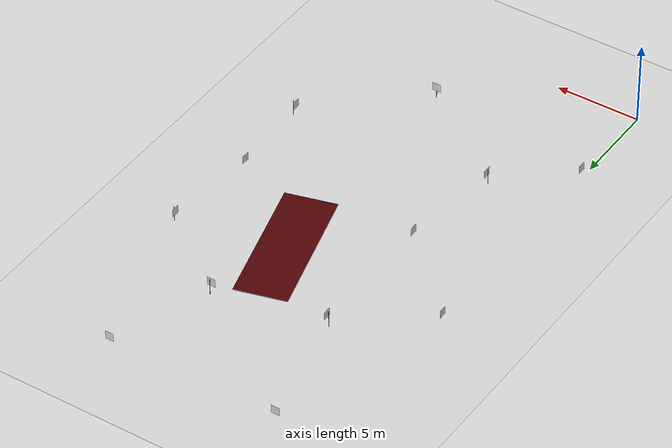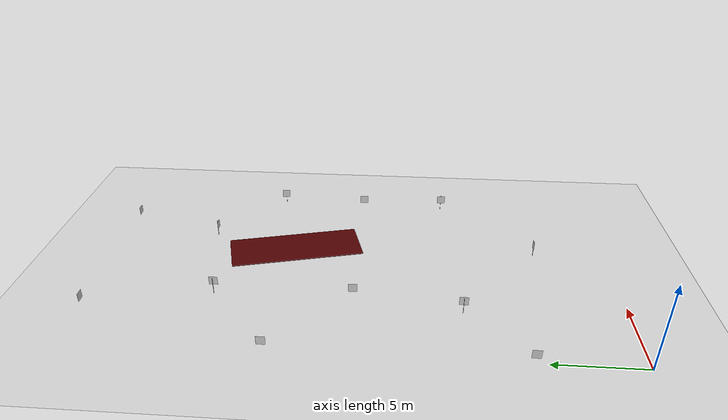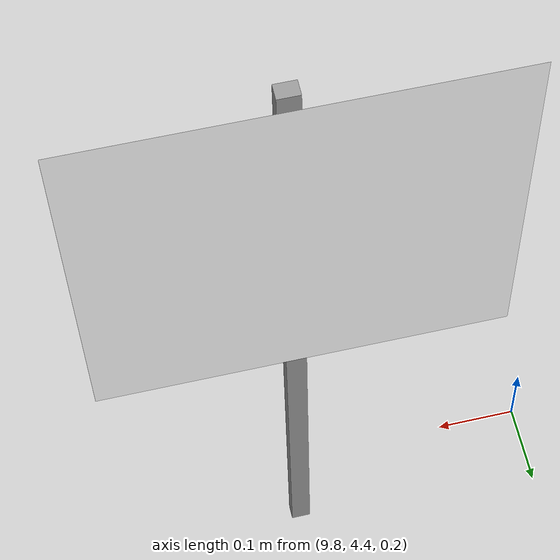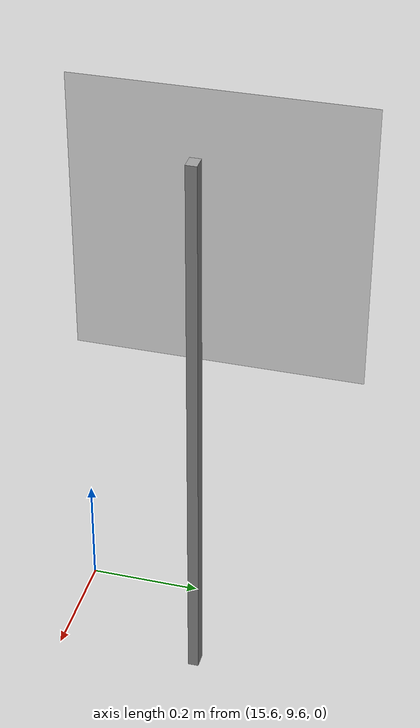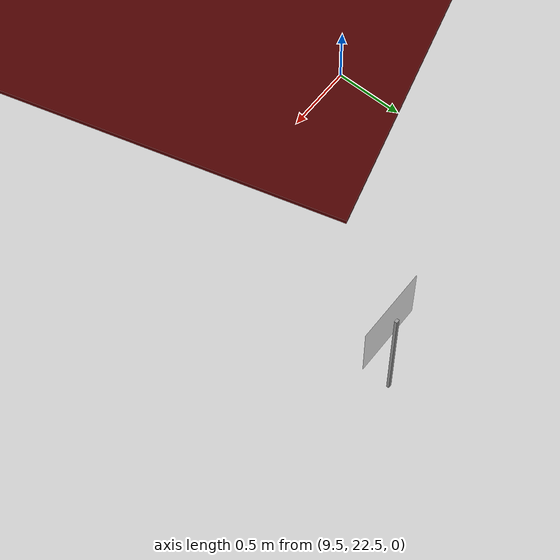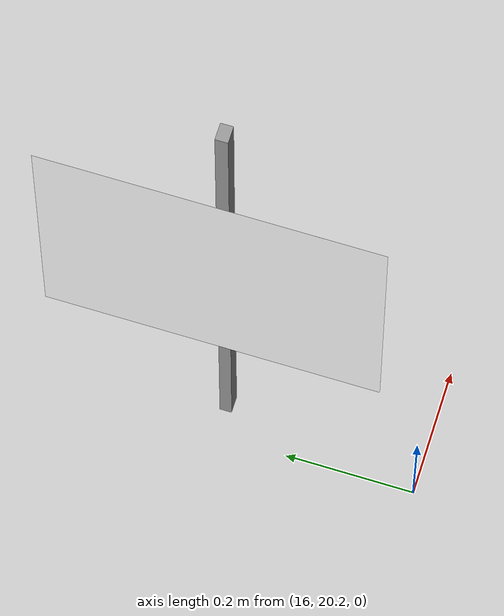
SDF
<sdf version="1.6">
 <world name="default">
  <light name="sun" type="directional">
   <pose>0 0 10 0 -0 0</pose>
   <diffuse>0.8 0.8 0.8 1</diffuse>
   <specular>0.1 0.1 0.1 1</specular>
   <attenuation>
    <range>1000</range>
    <constant>0.9</constant>
    <linear>0.01</linear>
    <quadratic>0.001</quadratic>
   </attenuation>
   <direction>-0.5 0.5 -1</direction>
  </light>
  <model name="ground_plane">
   <static>1</static>
   <link name="link">
    <collision name="collision">
     <geometry><plane><normal>0 0 1</normal><size>100 100</size></plane></geometry>
     <surface><friction><ode><mu>100</mu><mu2>50</mu2></ode></friction></surface>
    </collision>
    <visual name="visual">
     <cast_shadows>0</cast_shadows>
     <geometry><plane><normal>0 0 1</normal><size>100 100</size></plane></geometry>
     <material>
      <script><uri>file://media/materials/scripts/gazebo.material</uri><name>Gazebo/Grey</name></script>
     </material>
    </visual>
   </link>
  </model>
  <gravity>0 0 -9.8</gravity>
  <magnetic_field>6e-06 2.3e-05 -4.2e-05</magnetic_field>
  <atmosphere type="adiabatic"/>
  <physics name="default_physics" default="0" type="ode">
   <max_step_size>0.001</max_step_size>
   <real_time_factor>1</real_time_factor>
   <real_time_update_rate>1000</real_time_update_rate>
  </physics>
  <scene><ambient>0.4 0.4 0.4 1</ambient><background>0.7 0.7 0.7 1</background><shadows>1</shadows></scene>
  <spherical_coordinates>
   <surface_model>EARTH_WGS84</surface_model>
   <latitude_deg>0</latitude_deg>
   <longitude_deg>0</longitude_deg>
   <elevation>0</elevation>
   <heading_deg>0</heading_deg>
  </spherical_coordinates>
  <model name="aruco_visual_marker_0">
   <link name="marker">
    <visual name="visual">
     <geometry><box><size>0.5 0.5 1e-05</size></box></geometry>
     <material>
      <script>
       <uri>model://aruco_visual_marker_0/materials/scripts</uri>
       <uri>model://aruco_visual_marker_0/materials/textures</uri>
       <name>ArucoVisualMarker0/Marker</name>
      </script>
      <ambient>1 1 1 1</ambient>
      <diffuse>1 1 1 1</diffuse>
      <specular>0 0 0 1</specular>
      <emissive>1 1 1 0</emissive>
      <shader type="vertex"><normal_map>__default__</normal_map></shader>
     </material>
    </visual>
    <collision name="collision"><geometry><box><size>0.5 0.5 1e-05</size></box></geometry></collision>
   </link>
   <link name="marker_pad">
    <pose frame="marker">0 0 -1e-05 0 -0 0</pose>
    <visual name="visual">
     <geometry><box><size>1e-05 1e-05 1e-05</size></box></geometry>
     <material>
      <lighting>1</lighting>
      <script><uri>file://media/materials/scripts/gazebo.material</uri><name>Gazebo/White</name></script>
      <ambient>0.3 0.3 0.3 1</ambient>
      <diffuse>0.7 0.7 0.7 1</diffuse>
      <specular>0.01 0.01 0.01 1</specular>
      <emissive>1 1 1 0</emissive>
      <shader type="vertex"><normal_map>__default__</normal_map></shader>
     </material>
    </visual>
    <collision name="collision"><geometry><box><size>0.5 0.5 1e-05</size></box></geometry></collision>
   </link>
   <joint name="marker_JOINT_marker_pad" type="revolute">
    <parent>marker</parent>
    <child>marker_pad</child>
    <axis>
     <xyz>0 0 1</xyz>
     <limit><upper>0</upper><lower>0</lower></limit>
     <use_parent_model_frame>0</use_parent_model_frame>
     <dynamics><spring_reference>0</spring_reference><spring_stiffness>0</spring_stiffness></dynamics>
    </axis>
   </joint>
   <static>1</static>
   <pose>10.085 4.41103 0.744645 1.57079 -1.57079 3.14159</pose>
  </model>
  <model name="aruco_visual_marker_1">
   <link name="marker">
    <visual name="visual">
     <geometry><box><size>0.5 0.5 1e-05</size></box></geometry>
     <material>
      <script>
       <uri>model://aruco_visual_marker_1/materials/scripts</uri>
       <uri>model://aruco_visual_marker_1/materials/textures</uri>
       <name>ArucoVisualMarker1/Marker</name>
      </script>
      <ambient>1 1 1 1</ambient>
      <diffuse>1 1 1 1</diffuse>
      <specular>0 0 0 1</specular>
      <emissive>1 1 1 0</emissive>
      <shader type="vertex"><normal_map>__default__</normal_map></shader>
     </material>
    </visual>
    <collision name="collision"><geometry><box><size>0.5 0.5 1e-05</size></box></geometry></collision>
   </link>
   <link name="marker_pad">
    <pose frame="marker">0 0 -1e-05 0 -0 0</pose>
    <visual name="visual">
     <geometry><box><size>1e-05 1e-05 1e-05</size></box></geometry>
     <material>
      <lighting>1</lighting>
      <script><uri>file://media/materials/scripts/gazebo.material</uri><name>Gazebo/White</name></script>
      <ambient>0.3 0.3 0.3 1</ambient>
      <diffuse>0.7 0.7 0.7 1</diffuse>
      <specular>0.01 0.01 0.01 1</specular>
      <emissive>1 1 1 0</emissive>
      <shader type="vertex"><normal_map>__default__</normal_map></shader>
     </material>
    </visual>
    <collision name="collision"><geometry><box><size>0.5 0.5 1e-05</size></box></geometry></collision>
   </link>
   <joint name="marker_JOINT_marker_pad" type="revolute">
    <parent>marker</parent>
    <child>marker_pad</child>
    <axis>
     <xyz>0 0 1</xyz>
     <limit><upper>0</upper><lower>0</lower></limit>
     <use_parent_model_frame>0</use_parent_model_frame>
     <dynamics><spring_reference>0</spring_reference><spring_stiffness>0</spring_stiffness></dynamics>
    </axis>
   </joint>
   <static>1</static>
   <pose>15.6106 9.84209 0.783528 -3.14159 -1.57079 -3.14159</pose>
  </model>
  <model name="aruco_visual_marker_2">
   <link name="marker">
    <visual name="visual">
     <geometry><box><size>0.5 0.5 1e-05</size></box></geometry>
     <material>
      <script>
       <uri>model://aruco_visual_marker_2/materials/scripts</uri>
       <uri>model://aruco_visual_marker_2/materials/textures</uri>
       <name>ArucoVisualMarker2/Marker</name>
      </script>
      <ambient>1 1 1 1</ambient>
      <diffuse>1 1 1 1</diffuse>
      <specular>0 0 0 1</specular>
      <emissive>1 1 1 0</emissive>
      <shader type="vertex"><normal_map>__default__</normal_map></shader>
     </material>
    </visual>
    <collision name="collision"><geometry><box><size>0.5 0.5 1e-05</size></box></geometry></collision>
   </link>
   <link name="marker_pad">
    <pose frame="marker">0 0 -1e-05 0 -0 0</pose>
    <visual name="visual">
     <geometry><box><size>1e-05 1e-05 1e-05</size></box></geometry>
     <material>
      <lighting>1</lighting>
      <script><uri>file://media/materials/scripts/gazebo.material</uri><name>Gazebo/White</name></script>
      <ambient>0.3 0.3 0.3 1</ambient>
      <diffuse>0.7 0.7 0.7 1</diffuse>
      <specular>0.01 0.01 0.01 1</specular>
      <emissive>1 1 1 0</emissive>
      <shader type="vertex"><normal_map>__default__</normal_map></shader>
     </material>
    </visual>
    <collision name="collision"><geometry><box><size>0.5 0.5 1e-05</size></box></geometry></collision>
   </link>
   <joint name="marker_JOINT_marker_pad" type="revolute">
    <parent>marker</parent>
    <child>marker_pad</child>
    <axis>
     <xyz>0 0 1</xyz>
     <limit><upper>0</upper><lower>0</lower></limit>
     <use_parent_model_frame>0</use_parent_model_frame>
     <dynamics><spring_reference>0</spring_reference><spring_stiffness>0</spring_stiffness></dynamics>
    </axis>
   </joint>
   <static>1</static>
   <pose>4.68821 15.0193 0.80357 -3e-06 -1.57079 3.14159</pose>
  </model>
  <model name="aruco_visual_marker_3">
   <link name="marker">
    <visual name="visual">
     <geometry><box><size>0.5 0.5 1e-05</size></box></geometry>
     <material>
      <script>
       <uri>model://aruco_visual_marker_3/materials/scripts</uri>
       <uri>model://aruco_visual_marker_3/materials/textures</uri>
       <name>ArucoVisualMarker3/Marker</name>
      </script>
      <ambient>1 1 1 1</ambient>
      <diffuse>1 1 1 1</diffuse>
      <specular>0 0 0 1</specular>
      <emissive>1 1 1 0</emissive>
      <shader type="vertex"><normal_map>__default__</normal_map></shader>
     </material>
    </visual>
    <collision name="collision"><geometry><box><size>0.5 0.5 1e-05</size></box></geometry></collision>
   </link>
   <link name="marker_pad">
    <pose frame="marker">0 0 -1e-05 0 -0 0</pose>
    <visual name="visual">
     <geometry><box><size>1e-05 1e-05 1e-05</size></box></geometry>
     <material>
      <lighting>1</lighting>
      <script><uri>file://media/materials/scripts/gazebo.material</uri><name>Gazebo/White</name></script>
      <ambient>0.3 0.3 0.3 1</ambient>
      <diffuse>0.7 0.7 0.7 1</diffuse>
      <specular>0.01 0.01 0.01 1</specular>
      <emissive>1 1 1 0</emissive>
      <shader type="vertex"><normal_map>__default__</normal_map></shader>
     </material>
    </visual>
    <collision name="collision"><geometry><box><size>0.5 0.5 1e-05</size></box></geometry></collision>
   </link>
   <joint name="marker_JOINT_marker_pad" type="revolute">
    <parent>marker</parent>
    <child>marker_pad</child>
    <axis>
     <xyz>0 0 1</xyz>
     <limit><upper>0</upper><lower>0</lower></limit>
     <use_parent_model_frame>0</use_parent_model_frame>
     <dynamics><spring_reference>0</spring_reference><spring_stiffness>0</spring_stiffness></dynamics>
    </axis>
   </joint>
   <static>1</static>
   <pose>11.1299 24.1027 0.785654 -1.57554 -1.57079 -3.13686</pose>
  </model>
  <model name="unit_box_0_0">
   <link name="link">
    <inertial>
     <mass>1</mass>
     <inertia>
      <ixx>0.166667</ixx>
      <ixy>0</ixy>
      <ixz>0</ixz>
      <iyy>0.166667</iyy>
      <iyz>0</iyz>
      <izz>0.166667</izz>
     </inertia>
    </inertial>
    <visual name="visual">
     <geometry><box><size>0.025351 0.018729 1</size></box></geometry>
     <material>
      <script><name>Gazebo/Grey</name><uri>file://media/materials/scripts/gazebo.material</uri></script>
      <ambient>1 1 1 1</ambient>
      <diffuse>0.7 0.7 0.7 1</diffuse>
      <specular>0.01 0.01 0.01 1</specular>
      <emissive>0.7 0.7 0.7 1</emissive>
      <shader type="vertex"><normal_map>__default__</normal_map></shader>
     </material>
    </visual>
    <collision name="collision">
     <geometry><box><size>0.025351 0.018729 1</size></box></geometry>
     <surface>
      <friction>
       <ode><mu>1</mu><mu2>1</mu2><fdir1>0 0 0</fdir1><slip1>0</slip1><slip2>0</slip2></ode>
       <torsional>
        <coefficient>1</coefficient>
        <patch_radius>0</patch_radius>
        <surface_radius>0</surface_radius>
        <use_patch_radius>1</use_patch_radius>
        <ode><slip>0</slip></ode>
       </torsional>
      </friction>
      <bounce><restitution_coefficient>0</restitution_coefficient><threshold>1e+06</threshold></bounce>
      <contact>
       <collide_without_contact>0</collide_without_contact>
       <collide_without_contact_bitmask>1</collide_without_contact_bitmask>
       <collide_bitmask>1</collide_bitmask>
       <ode>
        <soft_cfm>0</soft_cfm>
        <soft_erp>0.2</soft_erp>
        <kp>1e+13</kp>
        <kd>1</kd>
        <max_vel>0.01</max_vel>
        <min_depth>0</min_depth>
       </ode>
       <bullet>
        <split_impulse>1</split_impulse>
        <split_impulse_penetration_threshold>-0.01</split_impulse_penetration_threshold>
        <soft_cfm>0</soft_cfm>
        <soft_erp>0.2</soft_erp>
        <kp>1e+13</kp>
        <kd>1</kd>
       </bullet>
      </contact>
     </surface>
    </collision>
   </link>
   <static>0</static>
   <pose>15.7825 9.84777 0.5 -8e-06 6e-06 0.000768</pose>
  </model>
  <model name="unit_box_0_0_clone_1">
   <link name="link">
    <inertial>
     <mass>1</mass>
     <inertia>
      <ixx>0.166667</ixx>
      <ixy>0</ixy>
      <ixz>0</ixz>
      <iyy>0.166667</iyy>
      <iyz>0</iyz>
      <izz>0.166667</izz>
     </inertia>
    </inertial>
    <visual name="visual">
     <geometry><box><size>0.025351 0.018729 1</size></box></geometry>
     <material>
      <script><name>Gazebo/Grey</name><uri>file://media/materials/scripts/gazebo.material</uri></script>
      <ambient>1 1 1 1</ambient>
      <diffuse>0.7 0.7 0.7 1</diffuse>
      <specular>0.01 0.01 0.01 1</specular>
      <emissive>0.7 0.7 0.7 1</emissive>
      <shader type="vertex"><normal_map>__default__</normal_map></shader>
     </material>
    </visual>
    <collision name="collision">
     <geometry><box><size>0.025351 0.018729 1</size></box></geometry>
     <surface>
      <friction>
       <ode><mu>1</mu><mu2>1</mu2><fdir1>0 0 0</fdir1><slip1>0</slip1><slip2>0</slip2></ode>
       <torsional>
        <coefficient>1</coefficient>
        <patch_radius>0</patch_radius>
        <surface_radius>0</surface_radius>
        <use_patch_radius>1</use_patch_radius>
        <ode><slip>0</slip></ode>
       </torsional>
      </friction>
      <bounce><restitution_coefficient>0</restitution_coefficient><threshold>1e+06</threshold></bounce>
      <contact>
       <collide_without_contact>0</collide_without_contact>
       <collide_without_contact_bitmask>1</collide_without_contact_bitmask>
       <collide_bitmask>1</collide_bitmask>
       <ode>
        <soft_cfm>0</soft_cfm>
        <soft_erp>0.2</soft_erp>
        <kp>1e+13</kp>
        <kd>1</kd>
        <max_vel>0.01</max_vel>
        <min_depth>0</min_depth>
       </ode>
       <bullet>
        <split_impulse>1</split_impulse>
        <split_impulse_penetration_threshold>-0.01</split_impulse_penetration_threshold>
        <soft_cfm>0</soft_cfm>
        <soft_erp>0.2</soft_erp>
        <kp>1e+13</kp>
        <kd>1</kd>
       </bullet>
      </contact>
     </surface>
    </collision>
   </link>
   <static>0</static>
   <pose>11.1759 24.179 0.5 5e-06 -2e-06 0.000407</pose>
  </model>
  <model name="aruco_visual_marker_4">
   <link name="marker">
    <visual name="visual">
     <geometry><box><size>0.5 0.5 1e-05</size></box></geometry>
     <material>
      <script>
       <uri>model://aruco_visual_marker_4/materials/scripts</uri>
       <uri>model://aruco_visual_marker_4/materials/textures</uri>
       <name>ArucoVisualMarker4/Marker</name>
      </script>
      <ambient>1 1 1 1</ambient>
      <diffuse>1 1 1 1</diffuse>
      <specular>0 0 0 1</specular>
      <emissive>1 1 1 0</emissive>
      <shader type="vertex"><normal_map>__default__</normal_map></shader>
     </material>
    </visual>
    <collision name="collision"><geometry><box><size>0.5 0.5 1e-05</size></box></geometry></collision>
   </link>
   <link name="marker_pad">
    <pose frame="marker">0 0 -1e-05 0 -0 0</pose>
    <visual name="visual">
     <geometry><box><size>1e-05 1e-05 1e-05</size></box></geometry>
     <material>
      <lighting>1</lighting>
      <script><uri>file://media/materials/scripts/gazebo.material</uri><name>Gazebo/White</name></script>
      <ambient>0.3 0.3 0.3 1</ambient>
      <diffuse>0.7 0.7 0.7 1</diffuse>
      <specular>0.01 0.01 0.01 1</specular>
      <emissive>1 1 1 0</emissive>
      <shader type="vertex"><normal_map>__default__</normal_map></shader>
     </material>
    </visual>
    <collision name="collision"><geometry><box><size>0.5 0.5 1e-05</size></box></geometry></collision>
   </link>
   <joint name="marker_JOINT_marker_pad" type="revolute">
    <parent>marker</parent>
    <child>marker_pad</child>
    <axis>
     <xyz>0 0 1</xyz>
     <limit><upper>0</upper><lower>0</lower></limit>
     <use_parent_model_frame>0</use_parent_model_frame>
     <dynamics><spring_reference>0</spring_reference><spring_stiffness>0</spring_stiffness></dynamics>
    </axis>
   </joint>
   <static>1</static>
   <pose>4.8351 22.8575 0.777007 -3e-06 -1.57079 3.14159</pose>
  </model>
  <model name="aruco_visual_marker_5">
   <link name="marker">
    <visual name="visual">
     <geometry><box><size>0.5 0.5 1e-05</size></box></geometry>
     <material>
      <script>
       <uri>model://aruco_visual_marker_5/materials/scripts</uri>
       <uri>model://aruco_visual_marker_5/materials/textures</uri>
       <name>ArucoVisualMarker5/Marker</name>
      </script>
      <ambient>1 1 1 1</ambient>
      <diffuse>1 1 1 1</diffuse>
      <specular>0 0 0 1</specular>
      <emissive>1 1 1 0</emissive>
      <shader type="vertex"><normal_map>__default__</normal_map></shader>
     </material>
    </visual>
    <collision name="collision"><geometry><box><size>0.5 0.5 1e-05</size></box></geometry></collision>
   </link>
   <link name="marker_pad">
    <pose frame="marker">0 0 -1e-05 0 -0 0</pose>
    <visual name="visual">
     <geometry><box><size>1e-05 1e-05 1e-05</size></box></geometry>
     <material>
      <lighting>1</lighting>
      <script><uri>file://media/materials/scripts/gazebo.material</uri><name>Gazebo/White</name></script>
      <ambient>0.3 0.3 0.3 1</ambient>
      <diffuse>0.7 0.7 0.7 1</diffuse>
      <specular>0.01 0.01 0.01 1</specular>
      <emissive>1 1 1 0</emissive>
      <shader type="vertex"><normal_map>__default__</normal_map></shader>
     </material>
    </visual>
    <collision name="collision"><geometry><box><size>0.5 0.5 1e-05</size></box></geometry></collision>
   </link>
   <joint name="marker_JOINT_marker_pad" type="revolute">
    <parent>marker</parent>
    <child>marker_pad</child>
    <axis>
     <xyz>0 0 1</xyz>
     <limit><upper>0</upper><lower>0</lower></limit>
     <use_parent_model_frame>0</use_parent_model_frame>
     <dynamics><spring_reference>0</spring_reference><spring_stiffness>0</spring_stiffness></dynamics>
    </axis>
   </joint>
   <static>1</static>
   <pose>15.9781 20.5062 0.677507 3.14159 -1.57079 3.14159</pose>
  </model>
  <model name="aruco_visual_marker_6">
   <link name="marker">
    <visual name="visual">
     <geometry><box><size>0.5 0.5 1e-05</size></box></geometry>
     <material>
      <script>
       <uri>model://aruco_visual_marker_6/materials/scripts</uri>
       <uri>model://aruco_visual_marker_6/materials/textures</uri>
       <name>ArucoVisualMarker6/Marker</name>
      </script>
      <ambient>1 1 1 1</ambient>
      <diffuse>1 1 1 1</diffuse>
      <specular>0 0 0 1</specular>
      <emissive>1 1 1 0</emissive>
      <shader type="vertex"><normal_map>__default__</normal_map></shader>
     </material>
    </visual>
    <collision name="collision"><geometry><box><size>0.5 0.5 1e-05</size></box></geometry></collision>
   </link>
   <link name="marker_pad">
    <pose frame="marker">0 0 -1e-05 0 -0 0</pose>
    <visual name="visual">
     <geometry><box><size>1e-05 1e-05 1e-05</size></box></geometry>
     <material>
      <lighting>1</lighting>
      <script><uri>file://media/materials/scripts/gazebo.material</uri><name>Gazebo/White</name></script>
      <ambient>0.3 0.3 0.3 1</ambient>
      <diffuse>0.7 0.7 0.7 1</diffuse>
      <specular>0.01 0.01 0.01 1</specular>
      <emissive>1 1 1 0</emissive>
      <shader type="vertex"><normal_map>__default__</normal_map></shader>
     </material>
    </visual>
    <collision name="collision"><geometry><box><size>0.5 0.5 1e-05</size></box></geometry></collision>
   </link>
   <joint name="marker_JOINT_marker_pad" type="revolute">
    <parent>marker</parent>
    <child>marker_pad</child>
    <axis>
     <xyz>0 0 1</xyz>
     <limit><upper>0</upper><lower>0</lower></limit>
     <use_parent_model_frame>0</use_parent_model_frame>
     <dynamics><spring_reference>0</spring_reference><spring_stiffness>0</spring_stiffness></dynamics>
    </axis>
   </joint>
   <static>1</static>
   <pose>4.00249 8.95616 0.739884 -3e-06 -1.57079 3.14159</pose>
  </model>
  <model name="aruco_visual_marker_7">
   <link name="marker">
    <visual name="visual">
     <geometry><box><size>0.5 0.5 1e-05</size></box></geometry>
     <material>
      <script>
       <uri>model://aruco_visual_marker_7/materials/scripts</uri>
       <uri>model://aruco_visual_marker_7/materials/textures</uri>
       <name>ArucoVisualMarker7/Marker</name>
      </script>
      <ambient>1 1 1 1</ambient>
      <diffuse>1 1 1 1</diffuse>
      <specular>0 0 0 1</specular>
      <emissive>1 1 1 0</emissive>
      <shader type="vertex"><normal_map>__default__</normal_map></shader>
     </material>
    </visual>
    <collision name="collision"><geometry><box><size>0.5 0.5 1e-05</size></box></geometry></collision>
   </link>
   <link name="marker_pad">
    <pose frame="marker">0 0 -1e-05 0 -0 0</pose>
    <visual name="visual">
     <geometry><box><size>1e-05 1e-05 1e-05</size></box></geometry>
     <material>
      <lighting>1</lighting>
      <script><uri>file://media/materials/scripts/gazebo.material</uri><name>Gazebo/White</name></script>
      <ambient>0.3 0.3 0.3 1</ambient>
      <diffuse>0.7 0.7 0.7 1</diffuse>
      <specular>0.01 0.01 0.01 1</specular>
      <emissive>1 1 1 0</emissive>
      <shader type="vertex"><normal_map>__default__</normal_map></shader>
     </material>
    </visual>
    <collision name="collision"><geometry><box><size>0.5 0.5 1e-05</size></box></geometry></collision>
   </link>
   <joint name="marker_JOINT_marker_pad" type="revolute">
    <parent>marker</parent>
    <child>marker_pad</child>
    <axis>
     <xyz>0 0 1</xyz>
     <limit><upper>0</upper><lower>0</lower></limit>
     <use_parent_model_frame>0</use_parent_model_frame>
     <dynamics><spring_reference>0</spring_reference><spring_stiffness>0</spring_stiffness></dynamics>
    </axis>
   </joint>
   <static>1</static>
   <pose>15.3213 15.043 0.769285 3.14159 -1.57079 3.14159</pose>
  </model>
  <model name="unit_box_0_0_clone_1_clone_0">
   <link name="link">
    <inertial>
     <mass>1</mass>
     <inertia>
      <ixx>0.166667</ixx>
      <ixy>0</ixy>
      <ixz>0</ixz>
      <iyy>0.166667</iyy>
      <iyz>0</iyz>
      <izz>0.166667</izz>
     </inertia>
    </inertial>
    <visual name="visual">
     <geometry><box><size>0.025351 0.018729 1</size></box></geometry>
     <material>
      <script><name>Gazebo/Grey</name><uri>file://media/materials/scripts/gazebo.material</uri></script>
      <ambient>1 1 1 1</ambient>
      <diffuse>0.7 0.7 0.7 1</diffuse>
      <specular>0.01 0.01 0.01 1</specular>
      <emissive>0.7 0.7 0.7 1</emissive>
      <shader type="vertex"><normal_map>__default__</normal_map></shader>
     </material>
    </visual>
    <collision name="collision">
     <geometry><box><size>0.025351 0.018729 1</size></box></geometry>
     <surface>
      <friction>
       <ode><mu>1</mu><mu2>1</mu2><fdir1>0 0 0</fdir1><slip1>0</slip1><slip2>0</slip2></ode>
       <torsional>
        <coefficient>1</coefficient>
        <patch_radius>0</patch_radius>
        <surface_radius>0</surface_radius>
        <use_patch_radius>1</use_patch_radius>
        <ode><slip>0</slip></ode>
       </torsional>
      </friction>
      <bounce><restitution_coefficient>0</restitution_coefficient><threshold>1e+06</threshold></bounce>
      <contact>
       <collide_without_contact>0</collide_without_contact>
       <collide_without_contact_bitmask>1</collide_without_contact_bitmask>
       <collide_bitmask>1</collide_bitmask>
       <ode>
        <soft_cfm>0</soft_cfm>
        <soft_erp>0.2</soft_erp>
        <kp>1e+13</kp>
        <kd>1</kd>
        <max_vel>0.01</max_vel>
        <min_depth>0</min_depth>
       </ode>
       <bullet>
        <split_impulse>1</split_impulse>
        <split_impulse_penetration_threshold>-0.01</split_impulse_penetration_threshold>
        <soft_cfm>0</soft_cfm>
        <soft_erp>0.2</soft_erp>
        <kp>1e+13</kp>
        <kd>1</kd>
       </bullet>
      </contact>
     </surface>
    </collision>
   </link>
   <static>0</static>
   <pose>3.93268 8.95438 0.5 -1.5e-05 5e-06 0.00017</pose>
  </model>
  <model name="unit_box_0_0_clone_1_clone_2">
   <link name="link">
    <inertial>
     <mass>1</mass>
     <inertia>
      <ixx>0.166667</ixx>
      <ixy>0</ixy>
      <ixz>0</ixz>
      <iyy>0.166667</iyy>
      <iyz>0</iyz>
      <izz>0.166667</izz>
     </inertia>
    </inertial>
    <visual name="visual">
     <geometry><box><size>0.025351 0.018729 1</size></box></geometry>
     <material>
      <script><name>Gazebo/Grey</name><uri>file://media/materials/scripts/gazebo.material</uri></script>
      <ambient>1 1 1 1</ambient>
      <diffuse>0.7 0.7 0.7 1</diffuse>
      <specular>0.01 0.01 0.01 1</specular>
      <emissive>0.7 0.7 0.7 1</emissive>
      <shader type="vertex"><normal_map>__default__</normal_map></shader>
     </material>
    </visual>
    <collision name="collision">
     <geometry><box><size>0.025351 0.018729 1</size></box></geometry>
     <surface>
      <friction>
       <ode><mu>1</mu><mu2>1</mu2><fdir1>0 0 0</fdir1><slip1>0</slip1><slip2>0</slip2></ode>
       <torsional>
        <coefficient>1</coefficient>
        <patch_radius>0</patch_radius>
        <surface_radius>0</surface_radius>
        <use_patch_radius>1</use_patch_radius>
        <ode><slip>0</slip></ode>
       </torsional>
      </friction>
      <bounce><restitution_coefficient>0</restitution_coefficient><threshold>1e+06</threshold></bounce>
      <contact>
       <collide_without_contact>0</collide_without_contact>
       <collide_without_contact_bitmask>1</collide_without_contact_bitmask>
       <collide_bitmask>1</collide_bitmask>
       <ode>
        <soft_cfm>0</soft_cfm>
        <soft_erp>0.2</soft_erp>
        <kp>1e+13</kp>
        <kd>1</kd>
        <max_vel>0.01</max_vel>
        <min_depth>0</min_depth>
       </ode>
       <bullet>
        <split_impulse>1</split_impulse>
        <split_impulse_penetration_threshold>-0.01</split_impulse_penetration_threshold>
        <soft_cfm>0</soft_cfm>
        <soft_erp>0.2</soft_erp>
        <kp>1e+13</kp>
        <kd>1</kd>
       </bullet>
      </contact>
     </surface>
    </collision>
   </link>
   <static>0</static>
   <pose>16.0551 20.5083 0.5 -3e-06 1.3e-05 0.00041</pose>
  </model>
  <model name="empty"><pose>0 0 0.01 0 -0 0</pose></model>
  <model name="unit_box_0_0_clone">
   <link name="link">
    <inertial>
     <mass>1</mass>
     <inertia>
      <ixx>0.166667</ixx>
      <ixy>0</ixy>
      <ixz>0</ixz>
      <iyy>0.166667</iyy>
      <iyz>0</iyz>
      <izz>0.166667</izz>
     </inertia>
    </inertial>
    <visual name="visual">
     <geometry><box><size>0.025351 0.018729 1</size></box></geometry>
     <material>
      <script><name>Gazebo/Grey</name><uri>file://media/materials/scripts/gazebo.material</uri></script>
      <ambient>1 1 1 1</ambient>
      <diffuse>0.7 0.7 0.7 1</diffuse>
      <specular>0.01 0.01 0.01 1</specular>
      <emissive>0.7 0.7 0.7 1</emissive>
      <shader type="vertex"><normal_map>__default__</normal_map></shader>
     </material>
    </visual>
    <collision name="collision">
     <geometry><box><size>0.025351 0.018729 1</size></box></geometry>
     <surface>
      <friction>
       <ode><mu>1</mu><mu2>1</mu2><fdir1>0 0 0</fdir1><slip1>0</slip1><slip2>0</slip2></ode>
       <torsional>
        <coefficient>1</coefficient>
        <patch_radius>0</patch_radius>
        <surface_radius>0</surface_radius>
        <use_patch_radius>1</use_patch_radius>
        <ode><slip>0</slip></ode>
       </torsional>
      </friction>
      <bounce><restitution_coefficient>0</restitution_coefficient><threshold>1e+06</threshold></bounce>
      <contact>
       <collide_without_contact>0</collide_without_contact>
       <collide_without_contact_bitmask>1</collide_without_contact_bitmask>
       <collide_bitmask>1</collide_bitmask>
       <ode>
        <soft_cfm>0</soft_cfm>
        <soft_erp>0.2</soft_erp>
        <kp>1e+13</kp>
        <kd>1</kd>
        <max_vel>0.01</max_vel>
        <min_depth>0</min_depth>
       </ode>
       <bullet>
        <split_impulse>1</split_impulse>
        <split_impulse_penetration_threshold>-0.01</split_impulse_penetration_threshold>
        <soft_cfm>0</soft_cfm>
        <soft_erp>0.2</soft_erp>
        <kp>1e+13</kp>
        <kd>1</kd>
       </bullet>
      </contact>
     </surface>
    </collision>
   </link>
   <static>0</static>
   <pose>10.0916 4.38901 0.5 0 1e-06 0.000578</pose>
  </model>
  <model name="unit_box_0_0_clone_0">
   <link name="link">
    <inertial>
     <mass>1</mass>
     <inertia>
      <ixx>0.166667</ixx>
      <ixy>0</ixy>
      <ixz>0</ixz>
      <iyy>0.166667</iyy>
      <iyz>0</iyz>
      <izz>0.166667</izz>
     </inertia>
    </inertial>
    <visual name="visual">
     <geometry><box><size>0.025351 0.018729 1</size></box></geometry>
     <material>
      <script><name>Gazebo/Grey</name><uri>file://media/materials/scripts/gazebo.material</uri></script>
      <ambient>1 1 1 1</ambient>
      <diffuse>0.7 0.7 0.7 1</diffuse>
      <specular>0.01 0.01 0.01 1</specular>
      <emissive>0.7 0.7 0.7 1</emissive>
      <shader type="vertex"><normal_map>__default__</normal_map></shader>
     </material>
    </visual>
    <collision name="collision">
     <geometry><box><size>0.025351 0.018729 1</size></box></geometry>
     <surface>
      <contact>
       <collide_without_contact>0</collide_without_contact>
       <collide_without_contact_bitmask>1</collide_without_contact_bitmask>
       <collide_bitmask>1</collide_bitmask>
      </contact>
     </surface>
    </collision>
   </link>
   <static>0</static>
   <pose>4.72106 22.8688 0.5 4e-06 -5e-06 0.001231</pose>
  </model>
  <model name="chapa__3">
   <link name="link">
    <inertial>
     <mass>30</mass>
     <inertia>
      <ixx>0.166667</ixx>
      <ixy>0</ixy>
      <ixz>0</ixz>
      <iyy>0.166667</iyy>
      <iyz>0</iyz>
      <izz>0.166667</izz>
     </inertia>
    </inertial>
    <visual name="visual">
     <geometry><box><size>3 8 0.059693</size></box></geometry>
     <material>
      <script><name>Gazebo/Grey</name><uri>file://media/materials/scripts/gazebo.material</uri></script>
      <ambient>0.3 0 0 1</ambient>
      <diffuse>0.1 0.1 0.1 1</diffuse>
      <specular>0.3 0 0 1</specular>
      <emissive>0 0 0 1</emissive>
      <shader type="vertex"><normal_map>__default__</normal_map></shader>
     </material>
    </visual>
    <collision name="collision">
     <max_contacts>100</max_contacts>
     <geometry><box><size>3.28456 7.99272 0.019693</size></box></geometry>
     <surface>
      <contact>
       <collide_without_contact>0</collide_without_contact>
       <collide_without_contact_bitmask>0</collide_without_contact_bitmask>
       <collide_bitmask>0</collide_bitmask>
      </contact>
     </surface>
    </collision>
   </link>
   <static>1</static>
   <pose>10 19 0.009846 0 -0 0.2618</pose>
  </model>
  <model name="aruco_visual_marker_8">
   <link name="marker">
    <visual name="visual">
     <geometry><box><size>0.5 0.5 1e-05</size></box></geometry>
     <material>
      <script>
       <uri>model://aruco_visual_marker_8/materials/scripts</uri>
       <uri>model://aruco_visual_marker_8/materials/textures</uri>
       <name>ArucoVisualMarker8/Marker</name>
      </script>
      <ambient>1 1 1 1</ambient>
      <diffuse>1 1 1 1</diffuse>
      <specular>0 0 0 1</specular>
      <emissive>1 1 1 0</emissive>
      <shader type="vertex"><normal_map>__default__</normal_map></shader>
     </material>
    </visual>
    <collision name="collision"><geometry><box><size>0.5 0.5 1e-05</size></box></geometry></collision>
   </link>
   <link name="marker_pad">
    <pose frame="marker">0 0 -1e-05 0 -0 0</pose>
    <visual name="visual">
     <geometry><box><size>1e-05 1e-05 1e-05</size></box></geometry>
     <material>
      <lighting>1</lighting>
      <script><uri>file://media/materials/scripts/gazebo.material</uri><name>Gazebo/White</name></script>
      <ambient>0.3 0.3 0.3 1</ambient>
      <diffuse>0.7 0.7 0.7 1</diffuse>
      <specular>0.01 0.01 0.01 1</specular>
      <emissive>1 1 1 0</emissive>
      <shader type="vertex"><normal_map>__default__</normal_map></shader>
     </material>
    </visual>
    <collision name="collision"><geometry><box><size>0.5 0.5 1e-05</size></box></geometry></collision>
   </link>
   <joint name="marker_JOINT_marker_pad" type="revolute">
    <parent>marker</parent>
    <child>marker_pad</child>
    <axis>
     <xyz>0 0 1</xyz>
     <limit><upper>0</upper><lower>0</lower></limit>
     <use_parent_model_frame>0</use_parent_model_frame>
     <dynamics><spring_reference>0</spring_reference><spring_stiffness>0</spring_stiffness></dynamics>
    </axis>
   </joint>
   <static>1</static>
   <pose>3.16997 29.9054 0.539794 3.14159 -1.57079 -1.5708</pose>
  </model>
  <model name="aruco_visual_marker_9">
   <link name="marker">
    <visual name="visual">
     <geometry><box><size>0.5 0.5 1e-05</size></box></geometry>
     <material>
      <script>
       <uri>model://aruco_visual_marker_9/materials/scripts</uri>
       <uri>model://aruco_visual_marker_9/materials/textures</uri>
       <name>ArucoVisualMarker9/Marker</name>
      </script>
      <ambient>1 1 1 1</ambient>
      <diffuse>1 1 1 1</diffuse>
      <specular>0 0 0 1</specular>
      <emissive>1 1 1 0</emissive>
      <shader type="vertex"><normal_map>__default__</normal_map></shader>
     </material>
    </visual>
    <collision name="collision"><geometry><box><size>0.5 0.5 1e-05</size></box></geometry></collision>
   </link>
   <link name="marker_pad">
    <pose frame="marker">0 0 -1e-05 0 -0 0</pose>
    <visual name="visual">
     <geometry><box><size>1e-05 1e-05 1e-05</size></box></geometry>
     <material>
      <lighting>1</lighting>
      <script><uri>file://media/materials/scripts/gazebo.material</uri><name>Gazebo/White</name></script>
      <ambient>0.3 0.3 0.3 1</ambient>
      <diffuse>0.7 0.7 0.7 1</diffuse>
      <specular>0.01 0.01 0.01 1</specular>
      <emissive>1 1 1 0</emissive>
      <shader type="vertex"><normal_map>__default__</normal_map></shader>
     </material>
    </visual>
    <collision name="collision"><geometry><box><size>0.5 0.5 1e-05</size></box></geometry></collision>
   </link>
   <joint name="marker_JOINT_marker_pad" type="revolute">
    <parent>marker</parent>
    <child>marker_pad</child>
    <axis>
     <xyz>0 0 1</xyz>
     <limit><upper>0</upper><lower>0</lower></limit>
     <use_parent_model_frame>0</use_parent_model_frame>
     <dynamics><spring_reference>0</spring_reference><spring_stiffness>0</spring_stiffness></dynamics>
    </axis>
   </joint>
   <static>1</static>
   <pose>13.3005 29.9675 0.437402 -1.57554 -1.57079 -3.13686</pose>
  </model>
  <model name="aruco_visual_marker_10">
   <link name="marker">
    <visual name="visual">
     <geometry><box><size>0.5 0.5 1e-05</size></box></geometry>
     <material>
      <script>
       <uri>model://aruco_visual_marker_10/materials/scripts</uri>
       <uri>model://aruco_visual_marker_10/materials/textures</uri>
       <name>ArucoVisualMarker10/Marker</name>
      </script>
      <ambient>1 1 1 1</ambient>
      <diffuse>1 1 1 1</diffuse>
      <specular>0 0 0 1</specular>
      <emissive>1 1 1 0</emissive>
      <shader type="vertex"><normal_map>__default__</normal_map></shader>
     </material>
    </visual>
    <collision name="collision"><geometry><box><size>0.5 0.5 1e-05</size></box></geometry></collision>
   </link>
   <link name="marker_pad">
    <pose frame="marker">0 0 -1e-05 0 -0 0</pose>
    <visual name="visual">
     <geometry><box><size>1e-05 1e-05 1e-05</size></box></geometry>
     <material>
      <lighting>1</lighting>
      <script><uri>file://media/materials/scripts/gazebo.material</uri><name>Gazebo/White</name></script>
      <ambient>0.3 0.3 0.3 1</ambient>
      <diffuse>0.7 0.7 0.7 1</diffuse>
      <specular>0.01 0.01 0.01 1</specular>
      <emissive>1 1 1 0</emissive>
      <shader type="vertex"><normal_map>__default__</normal_map></shader>
     </material>
    </visual>
    <collision name="collision"><geometry><box><size>0.5 0.5 1e-05</size></box></geometry></collision>
   </link>
   <joint name="marker_JOINT_marker_pad" type="revolute">
    <parent>marker</parent>
    <child>marker_pad</child>
    <axis>
     <xyz>0 0 1</xyz>
     <limit><upper>0</upper><lower>0</lower></limit>
     <use_parent_model_frame>0</use_parent_model_frame>
     <dynamics><spring_reference>0</spring_reference><spring_stiffness>0</spring_stiffness></dynamics>
    </axis>
   </joint>
   <static>1</static>
   <pose>0.148649 5.62511 0.513259 3.14159 -1.56032 -0</pose>
  </model>
  <model name="aruco_visual_marker_11">
   <link name="marker">
    <visual name="visual">
     <geometry><box><size>0.5 0.5 1e-05</size></box></geometry>
     <material>
      <script>
       <uri>model://aruco_visual_marker_11/materials/scripts</uri>
       <uri>model://aruco_visual_marker_11/materials/textures</uri>
       <name>ArucoVisualMarker11/Marker</name>
      </script>
      <ambient>1 1 1 1</ambient>
      <diffuse>1 1 1 1</diffuse>
      <specular>0 0 0 1</specular>
      <emissive>1 1 1 0</emissive>
      <shader type="vertex"><normal_map>__default__</normal_map></shader>
     </material>
    </visual>
    <collision name="collision"><geometry><box><size>0.5 0.5 1e-05</size></box></geometry></collision>
   </link>
   <link name="marker_pad">
    <pose frame="marker">0 0 -1e-05 0 -0 0</pose>
    <visual name="visual">
     <geometry><box><size>1e-05 1e-05 1e-05</size></box></geometry>
     <material>
      <lighting>1</lighting>
      <script><uri>file://media/materials/scripts/gazebo.material</uri><name>Gazebo/White</name></script>
      <ambient>0.3 0.3 0.3 1</ambient>
      <diffuse>0.7 0.7 0.7 1</diffuse>
      <specular>0.01 0.01 0.01 1</specular>
      <emissive>1 1 1 0</emissive>
      <shader type="vertex"><normal_map>__default__</normal_map></shader>
     </material>
    </visual>
    <collision name="collision"><geometry><box><size>0.5 0.5 1e-05</size></box></geometry></collision>
   </link>
   <joint name="marker_JOINT_marker_pad" type="revolute">
    <parent>marker</parent>
    <child>marker_pad</child>
    <axis>
     <xyz>0 0 1</xyz>
     <limit><upper>0</upper><lower>0</lower></limit>
     <use_parent_model_frame>0</use_parent_model_frame>
     <dynamics><spring_reference>0</spring_reference><spring_stiffness>0</spring_stiffness></dynamics>
    </axis>
   </joint>
   <static>1</static>
   <pose>0.140343 19.2989 0.528059 -3e-06 -1.57079 3.14159</pose>
  </model>
 </world>
</sdf>
